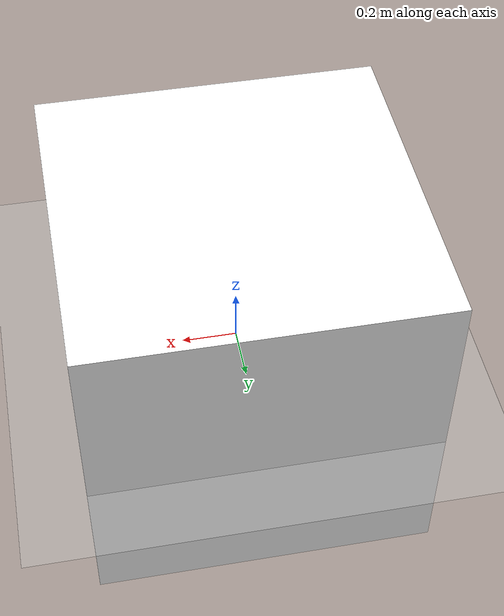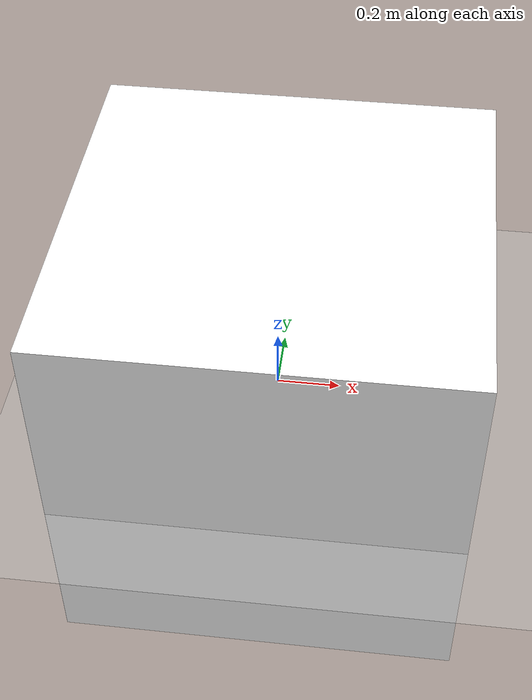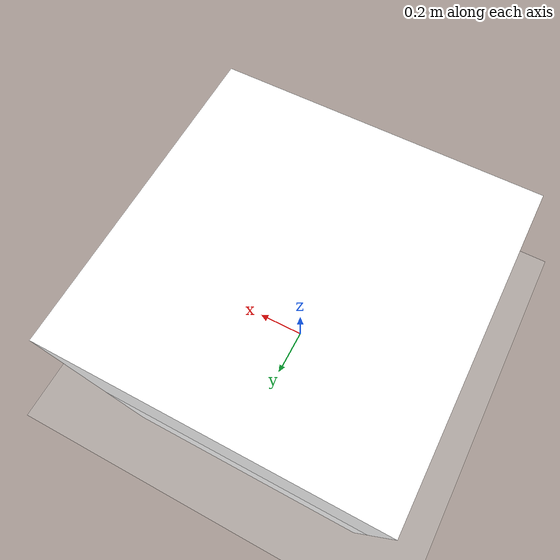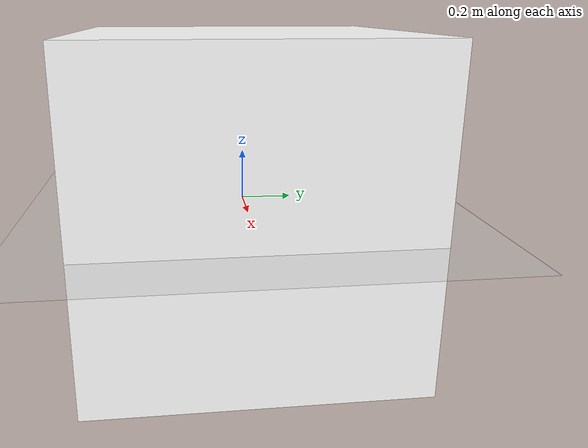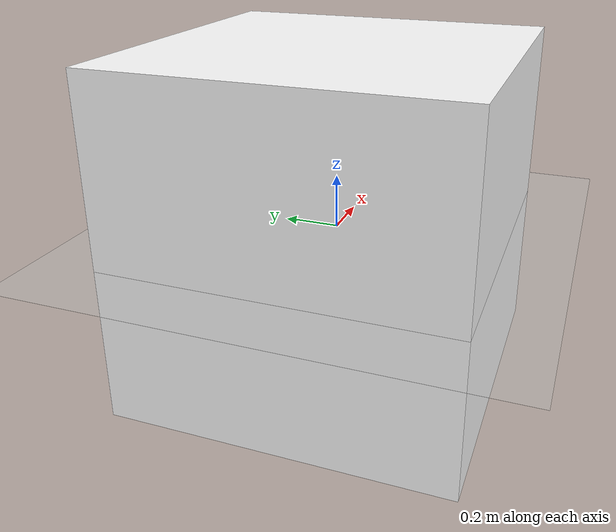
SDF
<?xml version="1.0" encoding="UTF-8"?>
<sdf version="1.9">
  <world name="px4_vision_landing_staticTag">

    <physics type="ode">
      <max_step_size>0.004</max_step_size>
      <real_time_factor>1.0</real_time_factor>
      <real_time_update_rate>250</real_time_update_rate>
    </physics>

    <gravity>0 0 -9.8</gravity>

    <magnetic_field>6e-06 2.3e-05 -4.2e-05</magnetic_field>

    <atmosphere type="adiabatic"/>

    <scene>
      <grid>false</grid>
      <ambient>0.4 0.4 0.4 1</ambient>
      <background>0.7 0.7 0.7 1</background>
      <shadows>true</shadows>
    </scene>

    <model name="ground_plane">
      <static>true</static>
      <link name="link">
        <collision name="collision">
          <geometry>
            <plane>
              <normal>0 0 1</normal>
              <size>1 1</size>
            </plane>
          </geometry>
          <surface>
            <friction>
              <ode/>
            </friction>
            <bounce/>
            <contact/>
          </surface>
        </collision>
        <visual name="visual">
          <geometry>
            <plane>
              <normal>0 0 1</normal>
              <size>500 500</size>
            </plane>
          </geometry>
          <material>
            <ambient>0.8 0.8 0.8 1</ambient>
            <diffuse>0.8 0.8 0.8 1</diffuse>
            <specular>0.8 0.8 0.8 1</specular>
          </material>
        </visual>
        <pose>0 0 0 0 -0 0</pose>
        <inertial>
          <pose>0 0 0 0 -0 0</pose>
          <mass>1</mass>
          <inertia>
            <ixx>1</ixx>
            <ixy>0</ixy>
            <ixz>0</ixz>
            <iyy>1</iyy>
            <iyz>0</iyz>
            <izz>1</izz>
          </inertia>
        </inertial>
        <enable_wind>false</enable_wind>
      </link>
      <pose>0 0 0 0 -0 0</pose>
      <self_collide>false</self_collide>
    </model>

    <light name="sunUTC" type="directional">
      <pose>0 0 500 0 -0 0</pose>
      <cast_shadows>true</cast_shadows>
      <intensity>1</intensity>
      <direction>0.001 0.625 -0.78</direction>
      <diffuse>0.904 0.904 0.904 1</diffuse>
      <specular>0.271 0.271 0.271 1</specular>
      <attenuation>
        <range>2000</range>
        <linear>0</linear>
        <constant>1</constant>
        <quadratic>0</quadratic>
      </attenuation>
      <spot>
        <inner_angle>0</inner_angle>
        <outer_angle>0</outer_angle>
        <falloff>0</falloff>
      </spot>
    </light>

    <spherical_coordinates>
      <surface_model>EARTH_WGS84</surface_model>
      <world_frame_orientation>ENU</world_frame_orientation>
      <latitude_deg>47.397971057728974</latitude_deg>
      <longitude_deg> 8.546163739800146</longitude_deg>
      <elevation>0</elevation>
    </spherical_coordinates>

    <!-- Static AprilTag base -->
    <include>
      <uri>model://apriltag_1000mm</uri>
      <pose>0 0 0 0 0 0</pose>
    </include>

  </world>
</sdf>

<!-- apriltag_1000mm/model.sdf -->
<sdf version="1.9">

  <model name="apriltag_1000mm">
    <static>true</static>

    <link name="base_link">

      <!-- Physical collision (simple box) -->
      <collision name="collision">
        <geometry>
          <box>
            <size>0.6 0.6 0.05</size>
          </box>
        </geometry>
      </collision>

      <!-- Visual: AprilTag -->
      <visual name="apriltag_visual">
        <pose>0 0 0.05 0 0 0</pose>
        <geometry>
          <box>
            <size>1.25 1.25 1.25</size>  <!-- 1.25m tag -->
          </box>
        </geometry>
        <material>
          <diffuse>1 1 1 1</diffuse>
          <specular>0.4 0.4 0.4 1</specular>
          <pbr>
            <metal>
              <albedo_map>model://apriltag_1000mm/materials/textures/tag36h11_id0_1000mmtag_1250mmtotal.png</albedo_map>
            </metal>
          </pbr>
        </material>
      </visual>

    </link>
  </model>

</sdf>
